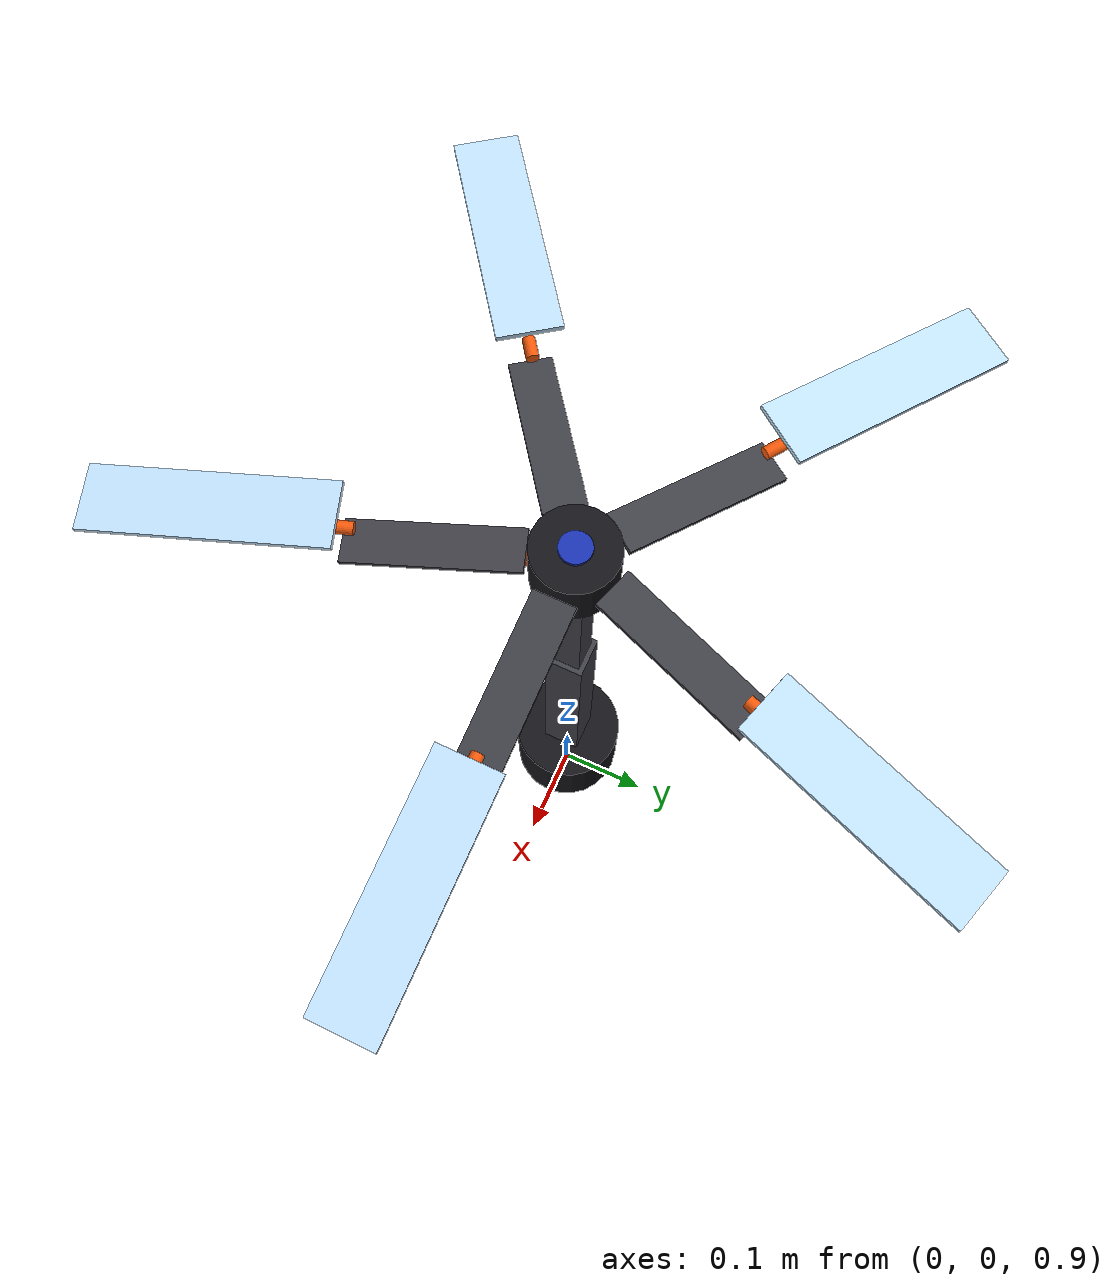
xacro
<?xml version="1.0"?>
<robot xmlns:xacro="http://www.ros.org/wiki/xacro" name="odradek_surgical_assistant">
    <xacro:arg name="initial_positions_file" default="initial_positions.yaml" />

    <!-- Import odradek_surgical_assistant urdf file -->
    <xacro:include filename="$(find surgical_assistant_description)/urdf/med_arm.urdf.xacro" />

    <!-- Import control_xacro -->
    <xacro:include filename="odradek_surgical_assistant.ros2_control.xacro" />

    <xacro:odradek_surgical_assistant_ros2_control name="FakeSystem" initial_positions_file="$(arg initial_positions_file)"/>

</robot>

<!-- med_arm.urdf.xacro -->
<robot xmlns:xacro="http://www.ros.org/wiki/xacro" name="odradek_surgical_assistant">

    <material name="matte_black">
        <color rgba="0.08 0.08 0.1 1.0"/>
    </material>
    <material name="gunmetal">
        <color rgba="0.25 0.25 0.28 1.0"/>
    </material>
    <material name="rich_orange">
        <color rgba="0.95 0.35 0.05 1.0"/>
    </material>
    <material name="pale_blue_scanner">
        <color rgba="0.75 0.88 0.98 0.9"/>
    </material>
    <material name="deep_blue_lens">
        <color rgba="0.1 0.2 0.7 1.0"/>
    </material>

    <xacro:macro name="inertial_cylinder" params="mass length radius *origin">
        <inertial>
            <xacro:insert_block name="origin"/>
            <mass value="${mass}" />
            <inertia ixx="${(1/12) * mass * (3*radius*radius + length*length)}" ixy="0.0" ixz="0.0"
                     iyy="${(1/12) * mass * (3*radius*radius + length*length)}" iyz="0.0"
                     izz="${(1/2) * mass * (radius*radius)}" />
        </inertial>
    </xacro:macro>

    <xacro:macro name="dummy_inertia">
        <inertial>
            <mass value="0.01" />
            <inertia ixx="0.00001" ixy="0.0" ixz="0.0"
                     iyy="0.00001" iyz="0.0"
                     izz="0.00001" />
        </inertial>
    </xacro:macro>

    <link name="world"/>

    <joint name="world_joint" type="fixed">
        <parent link="world"/>
        <child link="base_link"/>
        <origin xyz="0 0 1.0" rpy="0 0 0"/>
    </joint>

    <link name="base_link">
        <visual>
            <geometry><cylinder radius="0.06" length="0.1"/></geometry>
            <material name="matte_black"/>
        </visual>
        <collision>
            <geometry><cylinder radius="0.06" length="0.1"/></geometry>
        </collision>
        <xacro:inertial_cylinder mass="1.0" length="0.1" radius="0.06">
            <origin xyz="0 0 0" rpy="0 0 0"/>
        </xacro:inertial_cylinder>
    </link>

    <joint name="shoulder_yaw" type="revolute">
        <parent link="base_link"/><child link="shoulder_yaw_link"/>
        <origin xyz="0 0 0.05" rpy="0 0 0"/><axis xyz="0 0 1"/>
        <limit lower="-1.57" upper="1.57" effort="10" velocity="1"/>
    </joint>

    <link name="shoulder_yaw_link">
        <xacro:dummy_inertia/>
    </link>

    <joint name="shoulder_pitch" type="revolute">
        <parent link="shoulder_yaw_link"/><child link="shoulder_pitch_link"/>
        <origin xyz="0 0 0" rpy="0 0 0"/><axis xyz="0 1 0"/>
        <limit lower="-1.57" upper="1.57" effort="10" velocity="1"/>
    </joint>

    <link name="shoulder_pitch_link">
        <xacro:dummy_inertia/>
    </link>

    <joint name="shoulder_roll" type="revolute">
        <parent link="shoulder_pitch_link"/><child link="upper_arm"/>
        <origin xyz="0 0 0" rpy="0 0 0"/><axis xyz="1 0 0"/>
        <limit lower="-1.57" upper="1.57" effort="10" velocity="1"/>
    </joint>

    <link name="upper_arm">
        <visual>
            <origin xyz="0 0 0.15"/>
            <geometry><box size="0.04 0.04 0.3"/></geometry>
            <material name="gunmetal"/>
        </visual>
        <visual>
            <origin xyz="0 0 0"/>
            <geometry><cylinder radius="0.015" length="0.05"/></geometry>
            <material name="rich_orange"/>
        </visual>
        <collision>
            <origin xyz="0 0 0.15"/>
            <geometry><box size="0.04 0.04 0.3"/></geometry>
        </collision>
        <xacro:inertial_cylinder mass="1.0" length="0.3" radius="0.02">
            <origin xyz="0 0 0.15" rpy="0 0 0"/>
        </xacro:inertial_cylinder>
    </link>

    <joint name="elbow_yaw" type="revolute">
        <parent link="upper_arm"/><child link="elbow_yaw_link"/>
        <origin xyz="0 0 0.3" rpy="0 0 0"/><axis xyz="0 0 1"/>
        <limit lower="-1.57" upper="1.57" effort="10" velocity="1"/>
    </joint>

    <link name="elbow_yaw_link">
        <xacro:dummy_inertia/>
    </link>

    <joint name="elbow_pitch" type="revolute">
        <parent link="elbow_yaw_link"/><child link="elbow_pitch_link"/>
        <origin xyz="0 0 0" rpy="0 0 0"/><axis xyz="0 1 0"/>
        <limit lower="-2.0" upper="2.0" effort="10" velocity="1"/>
    </joint>

    <link name="elbow_pitch_link">
        <xacro:dummy_inertia/>
    </link>

    <joint name="elbow_roll" type="revolute">
        <parent link="elbow_pitch_link"/><child link="forearm"/>
        <origin xyz="0 0 0" rpy="0 0 0"/><axis xyz="1 0 0"/>
        <limit lower="-1.57" upper="1.57" effort="10" velocity="1"/>
    </joint>

    <link name="forearm">
        <visual>
            <origin xyz="0 0 0.125"/>
            <geometry><box size="0.03 0.03 0.25"/></geometry>
            <material name="gunmetal"/>
        </visual>
        <visual>
            <origin xyz="0 0 0"/>
            <geometry><cylinder radius="0.012" length="0.04"/></geometry>
            <material name="rich_orange"/>
        </visual>
        <collision>
            <origin xyz="0 0 0.125"/>
            <geometry><box size="0.03 0.03 0.25"/></geometry>
        </collision>
        <xacro:inertial_cylinder mass="0.6" length="0.25" radius="0.015">
            <origin xyz="0 0 0.125" rpy="0 0 0"/>
        </xacro:inertial_cylinder>
    </link>

    <joint name="wrist_roll" type="revolute">
        <parent link="forearm"/><child link="scanner_hub"/>
        <origin xyz="0 0 0.25" rpy="0 0 0"/><axis xyz="0 0 1"/>
        <limit lower="-3.14" upper="3.14" effort="5" velocity="2"/>
    </joint>

    <link name="scanner_hub">
        <visual>
            <geometry><cylinder radius="0.04" length="0.06"/></geometry>
            <material name="matte_black"/>
        </visual>
        <visual>
            <origin xyz="0 0 0.031"/>
            <geometry><cylinder radius="0.015" length="0.005"/></geometry>
            <material name="deep_blue_lens"/>
        </visual>
        <xacro:inertial_cylinder mass="0.2" length="0.06" radius="0.04">
            <origin xyz="0 0 0" rpy="0 0 0"/>
        </xacro:inertial_cylinder>
    </link>

    <xacro:macro name="odradek_petal" params="index angle">

        <joint name="petal_${index}_inner_joint" type="revolute">
            <parent link="scanner_hub"/>
            <child link="petal_${index}_inner_link"/>
            <origin xyz="${0.04 * cos(angle)} ${0.04 * sin(angle)} 0.0" rpy="0 1.57 ${angle}"/>
            <axis xyz="0 1 0"/>
            <limit lower="-1.2" upper="0.5" effort="3" velocity="1.5"/>
        </joint>

        <link name="petal_${index}_inner_link">
            <visual>
                <origin xyz="0 0 0.08" rpy="0 0.15 0"/>
                <geometry><box size="0.005 0.04 0.16"/></geometry>
                <material name="gunmetal"/>
            </visual>
            <visual>
                <origin xyz="0 0 0"/>
                <geometry><cylinder radius="0.008" length="0.02"/></geometry>
                <material name="rich_orange"/>
            </visual>
            <collision>
                <origin xyz="0 0 0.08" rpy="0 0.15 0"/>
                <geometry><box size="0.005 0.04 0.16"/></geometry>
            </collision>
            <xacro:inertial_cylinder mass="0.08" length="0.16" radius="0.01">
                <origin xyz="0 0 0.08" rpy="0 0 0"/>
            </xacro:inertial_cylinder>
        </link>

        <joint name="petal_${index}_outer_joint" type="revolute">
            <parent link="petal_${index}_inner_link"/>
            <child link="petal_${index}_outer_link"/>
            <origin xyz="-0.02 0 0.155" rpy="0 0 0"/>
            <axis xyz="0 1 0"/>
            <limit lower="-1.5" upper="0.5" effort="3" velocity="1.5"/>
        </joint>

        <link name="petal_${index}_outer_link">
            <visual>
                <origin xyz="-0.015 0 0.11" rpy="0 0.1 0"/>
                <geometry><box size="0.005 0.06 0.22"/></geometry>
                <material name="pale_blue_scanner"/>
            </visual>
            <visual>
                <origin xyz="0 0 0"/>
                <geometry><cylinder radius="0.006" length="0.02"/></geometry>
                <material name="rich_orange"/>
            </visual>
            <collision>
                <origin xyz="-0.015 0 0.11" rpy="0 0.1 0"/>
                <geometry><box size="0.005 0.06 0.22"/></geometry>
            </collision>
            <xacro:inertial_cylinder mass="0.06" length="0.22" radius="0.01">
                <origin xyz="-0.015 0 0.11" rpy="0 0 0"/>
            </xacro:inertial_cylinder>
        </link>
    </xacro:macro>

    <xacro:odradek_petal index="1" angle="0.0"/>
    <xacro:odradek_petal index="2" angle="1.256"/>
    <xacro:odradek_petal index="3" angle="2.513"/>
    <xacro:odradek_petal index="4" angle="3.769"/>
    <xacro:odradek_petal index="5" angle="5.026"/>

<xacro:macro name="ctrl_joint" params="name lower_limit upper_limit">
        <joint name="${name}">
            <command_interface name="position">
                <param name="min">${lower_limit}</param>
                <param name="max">${upper_limit}</param>
            </command_interface>
            <state_interface name="position"/>
            <state_interface name="velocity"/>
        </joint>
    </xacro:macro>

    <ros2_control name="GazeboSimSystem" type="system">
        <hardware>
            <plugin>gz_ros2_control/GazeboSimSystem</plugin>
        </hardware>

        <xacro:ctrl_joint name="shoulder_yaw" lower_limit="-1.57" upper_limit="1.57"/>
        <xacro:ctrl_joint name="shoulder_pitch" lower_limit="-1.57" upper_limit="1.57"/>
        <xacro:ctrl_joint name="shoulder_roll" lower_limit="-1.57" upper_limit="1.57"/>
        <xacro:ctrl_joint name="elbow_yaw" lower_limit="-1.57" upper_limit="1.57"/>
        <xacro:ctrl_joint name="elbow_pitch" lower_limit="-2.0" upper_limit="2.0"/>
        <xacro:ctrl_joint name="elbow_roll" lower_limit="-1.57" upper_limit="1.57"/>
        <xacro:ctrl_joint name="wrist_roll" lower_limit="-3.14" upper_limit="3.14"/>

        <xacro:macro name="petal_ctrl" params="index">
            <xacro:ctrl_joint name="petal_${index}_inner_joint" lower_limit="-1.2" upper_limit="0.5"/>
            <xacro:ctrl_joint name="petal_${index}_outer_joint" lower_limit="-1.5" upper_limit="0.5"/>
        </xacro:macro>

        <xacro:petal_ctrl index="1"/>
        <xacro:petal_ctrl index="2"/>
        <xacro:petal_ctrl index="3"/>
        <xacro:petal_ctrl index="4"/>
        <xacro:petal_ctrl index="5"/>
    </ros2_control>

    <gazebo>
        <plugin filename="gz_ros2_control-system" name="gz_ros2_control::GazeboSimROS2ControlPlugin">
            <parameters>$(find surgical_assistant_description)/config/controllers.yaml</parameters>
        </plugin>
    </gazebo>

</robot>
